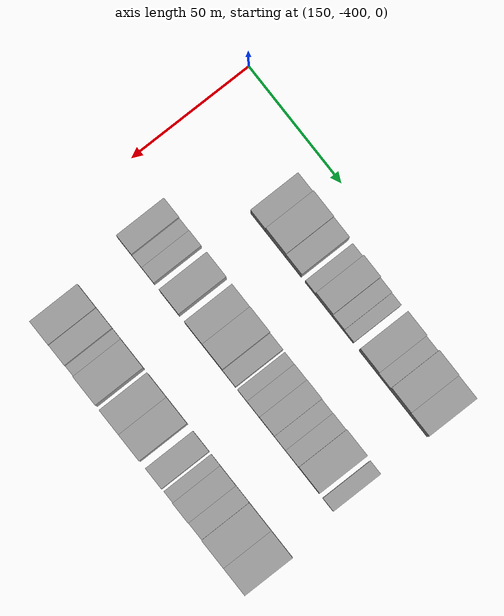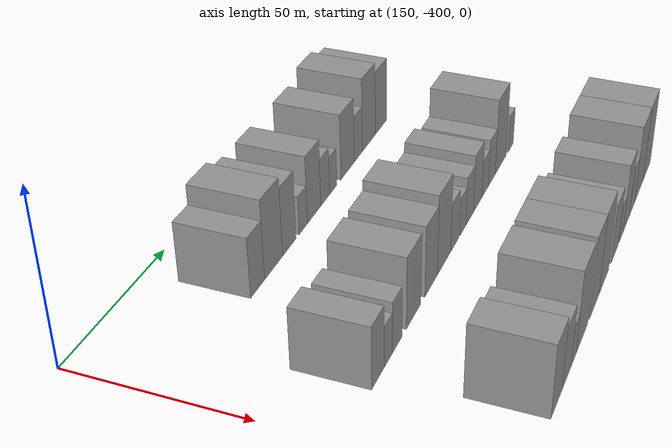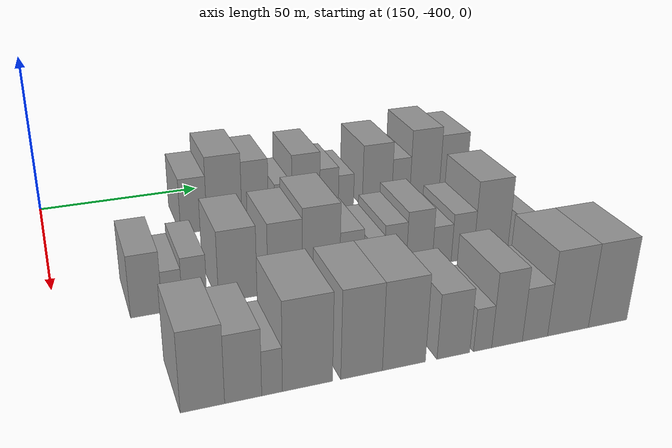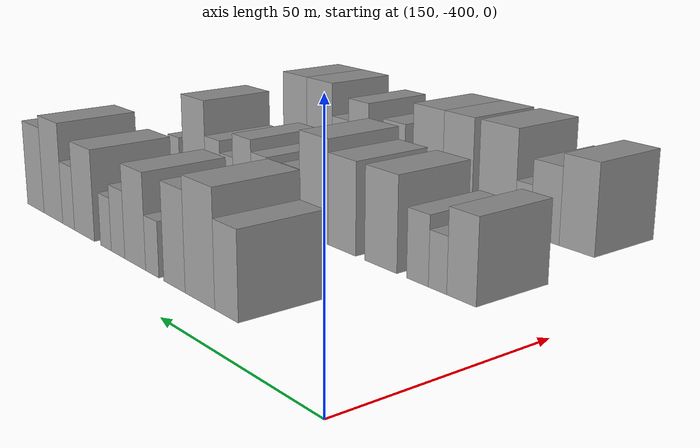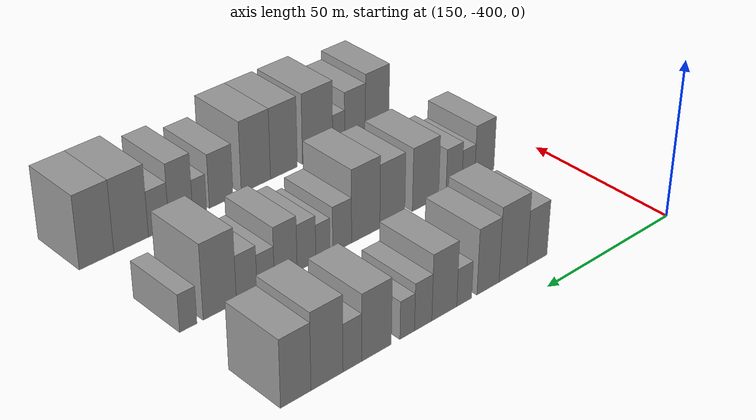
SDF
<sdf version="1.6">
 <world name="default">
  <model name="building_437">
   <static>1</static>
   <pose>170.0000 -356.8444 0 0.000000 0.000000 0.000000</pose>
   <link name="link">
    <pose>0 0 9.00 0 0 0</pose>
    <collision name="collision"><geometry><box><size>20.0000 8.0882 18.0000</size></box></geometry></collision>
    <visual name="visual">
     <cast_shadows>0</cast_shadows>
     <geometry><box><size>20.0000 8.0882 18.0000</size></box></geometry>
     <material>
      <script>
       <uri>model://grey_wall/materials/scripts</uri>
       <uri>model://grey_wall/materials/textures</uri>
       <name>vrc/grey_wall</name>
      </script>
     </material>
    </visual>
   </link>
  </model>
  <model name="building_438">
   <static>1</static>
   <pose>170.0000 -347.3635 0 0.000000 0.000000 0.000000</pose>
   <link name="link">
    <pose>0 0 12.00 0 0 0</pose>
    <collision name="collision"><geometry><box><size>20.0000 10.8737 24.0000</size></box></geometry></collision>
    <visual name="visual">
     <cast_shadows>0</cast_shadows>
     <geometry><box><size>20.0000 10.8737 24.0000</size></box></geometry>
     <material>
      <script>
       <uri>model://grey_wall/materials/scripts</uri>
       <uri>model://grey_wall/materials/textures</uri>
       <name>vrc/grey_wall</name>
      </script>
     </material>
    </visual>
   </link>
  </model>
  <model name="building_439">
   <static>1</static>
   <pose>170.0000 -337.7231 0 0.000000 0.000000 0.000000</pose>
   <link name="link">
    <pose>0 0 10.50 0 0 0</pose>
    <collision name="collision"><geometry><box><size>20.0000 8.4072 21.0000</size></box></geometry></collision>
    <visual name="visual">
     <cast_shadows>0</cast_shadows>
     <geometry><box><size>20.0000 8.4072 21.0000</size></box></geometry>
     <material>
      <script>
       <uri>model://grey_wall/materials/scripts</uri>
       <uri>model://grey_wall/materials/textures</uri>
       <name>vrc/grey_wall</name>
      </script>
     </material>
    </visual>
   </link>
  </model>
  <model name="building_440">
   <static>1</static>
   <pose>170.0000 -328.7533 0 0.000000 0.000000 0.000000</pose>
   <link name="link">
    <pose>0 0 6.00 0 0 0</pose>
    <collision name="collision"><geometry><box><size>20.0000 5.5322 12.0000</size></box></geometry></collision>
    <visual name="visual">
     <cast_shadows>0</cast_shadows>
     <geometry><box><size>20.0000 5.5322 12.0000</size></box></geometry>
     <material>
      <script>
       <uri>model://grey_wall/materials/scripts</uri>
       <uri>model://grey_wall/materials/textures</uri>
       <name>vrc/grey_wall</name>
      </script>
     </material>
    </visual>
   </link>
  </model>
  <model name="building_441">
   <static>1</static>
   <pose>170.0000 -321.4134 0 0.000000 0.000000 0.000000</pose>
   <link name="link">
    <pose>0 0 10.50 0 0 0</pose>
    <collision name="collision"><geometry><box><size>20.0000 9.1477 21.0000</size></box></geometry></collision>
    <visual name="visual">
     <cast_shadows>0</cast_shadows>
     <geometry><box><size>20.0000 9.1477 21.0000</size></box></geometry>
     <material>
      <script>
       <uri>model://grey_wall/materials/scripts</uri>
       <uri>model://grey_wall/materials/textures</uri>
       <name>vrc/grey_wall</name>
      </script>
     </material>
    </visual>
   </link>
  </model>
  <model name="building_442">
   <static>1</static>
   <pose>170.0000 -313.7286 0 0.000000 0.000000 0.000000</pose>
   <link name="link">
    <pose>0 0 7.50 0 0 0</pose>
    <collision name="collision"><geometry><box><size>20.0000 6.2219 15.0000</size></box></geometry></collision>
    <visual name="visual">
     <cast_shadows>0</cast_shadows>
     <geometry><box><size>20.0000 6.2219 15.0000</size></box></geometry>
     <material>
      <script>
       <uri>model://grey_wall/materials/scripts</uri>
       <uri>model://grey_wall/materials/textures</uri>
       <name>vrc/grey_wall</name>
      </script>
     </material>
    </visual>
   </link>
  </model>
  <model name="building_443">
   <static>1</static>
   <pose>170.0000 -308.0451 0 0.000000 0.000000 0.000000</pose>
   <link name="link">
    <pose>0 0 6.00 0 0 0</pose>
    <collision name="collision"><geometry><box><size>20.0000 5.1451 12.0000</size></box></geometry></collision>
    <visual name="visual">
     <cast_shadows>0</cast_shadows>
     <geometry><box><size>20.0000 5.1451 12.0000</size></box></geometry>
     <material>
      <script>
       <uri>model://grey_wall/materials/scripts</uri>
       <uri>model://grey_wall/materials/textures</uri>
       <name>vrc/grey_wall</name>
      </script>
     </material>
    </visual>
   </link>
  </model>
  <model name="building_444">
   <static>1</static>
   <pose>170.0000 -297.3879 0 0.000000 0.000000 0.000000</pose>
   <link name="link">
    <pose>0 0 10.50 0 0 0</pose>
    <collision name="collision"><geometry><box><size>20.0000 10.1693 21.0000</size></box></geometry></collision>
    <visual name="visual">
     <cast_shadows>0</cast_shadows>
     <geometry><box><size>20.0000 10.1693 21.0000</size></box></geometry>
     <material>
      <script>
       <uri>model://grey_wall/materials/scripts</uri>
       <uri>model://grey_wall/materials/textures</uri>
       <name>vrc/grey_wall</name>
      </script>
     </material>
    </visual>
   </link>
  </model>
  <model name="building_445">
   <static>1</static>
   <pose>170.0000 -289.1580 0 0.000000 0.000000 0.000000</pose>
   <link name="link">
    <pose>0 0 7.50 0 0 0</pose>
    <collision name="collision"><geometry><box><size>20.0000 6.2905 15.0000</size></box></geometry></collision>
    <visual name="visual">
     <cast_shadows>0</cast_shadows>
     <geometry><box><size>20.0000 6.2905 15.0000</size></box></geometry>
     <material>
      <script>
       <uri>model://grey_wall/materials/scripts</uri>
       <uri>model://grey_wall/materials/textures</uri>
       <name>vrc/grey_wall</name>
      </script>
     </material>
    </visual>
   </link>
  </model>
  <model name="building_446">
   <static>1</static>
   <pose>170.0000 -280.7615 0 0.000000 0.000000 0.000000</pose>
   <link name="link">
    <pose>0 0 12.00 0 0 0</pose>
    <collision name="collision"><geometry><box><size>20.0000 10.5026 24.0000</size></box></geometry></collision>
    <visual name="visual">
     <cast_shadows>0</cast_shadows>
     <geometry><box><size>20.0000 10.5026 24.0000</size></box></geometry>
     <material>
      <script>
       <uri>model://grey_wall/materials/scripts</uri>
       <uri>model://grey_wall/materials/textures</uri>
       <name>vrc/grey_wall</name>
      </script>
     </material>
    </visual>
   </link>
  </model>
  <model name="building_447">
   <static>1</static>
   <pose>170.0000 -270.6434 0 0.000000 0.000000 0.000000</pose>
   <link name="link">
    <pose>0 0 10.50 0 0 0</pose>
    <collision name="collision"><geometry><box><size>20.0000 9.7336 21.0000</size></box></geometry></collision>
    <visual name="visual">
     <cast_shadows>0</cast_shadows>
     <geometry><box><size>20.0000 9.7336 21.0000</size></box></geometry>
     <material>
      <script>
       <uri>model://grey_wall/materials/scripts</uri>
       <uri>model://grey_wall/materials/textures</uri>
       <name>vrc/grey_wall</name>
      </script>
     </material>
    </visual>
   </link>
  </model>
  <model name="building_570">
   <static>1</static>
   <pose>210.0000 -377.6664 0 0.000000 0.000000 0.000000</pose>
   <link name="link">
    <pose>0 0 9.00 0 0 0</pose>
    <collision name="collision"><geometry><box><size>20.0000 8.1096 18.0000</size></box></geometry></collision>
    <visual name="visual">
     <cast_shadows>0</cast_shadows>
     <geometry><box><size>20.0000 8.1096 18.0000</size></box></geometry>
     <material>
      <script>
       <uri>model://grey_wall/materials/scripts</uri>
       <uri>model://grey_wall/materials/textures</uri>
       <name>vrc/grey_wall</name>
      </script>
     </material>
    </visual>
   </link>
  </model>
  <model name="building_571">
   <static>1</static>
   <pose>210.0000 -370.9715 0 0.000000 0.000000 0.000000</pose>
   <link name="link">
    <pose>0 0 6.00 0 0 0</pose>
    <collision name="collision"><geometry><box><size>20.0000 5.2802 12.0000</size></box></geometry></collision>
    <visual name="visual">
     <cast_shadows>0</cast_shadows>
     <geometry><box><size>20.0000 5.2802 12.0000</size></box></geometry>
     <material>
      <script>
       <uri>model://grey_wall/materials/scripts</uri>
       <uri>model://grey_wall/materials/textures</uri>
       <name>vrc/grey_wall</name>
      </script>
     </material>
    </visual>
   </link>
  </model>
  <model name="building_572">
   <static>1</static>
   <pose>210.0000 -365.0639 0 0.000000 0.000000 0.000000</pose>
   <link name="link">
    <pose>0 0 7.50 0 0 0</pose>
    <collision name="collision"><geometry><box><size>20.0000 6.5351 15.0000</size></box></geometry></collision>
    <visual name="visual">
     <cast_shadows>0</cast_shadows>
     <geometry><box><size>20.0000 6.5351 15.0000</size></box></geometry>
     <material>
      <script>
       <uri>model://grey_wall/materials/scripts</uri>
       <uri>model://grey_wall/materials/textures</uri>
       <name>vrc/grey_wall</name>
      </script>
     </material>
    </visual>
   </link>
  </model>
  <model name="building_573">
   <static>1</static>
   <pose>210.0000 -353.5800 0 0.000000 0.000000 0.000000</pose>
   <link name="link">
    <pose>0 0 10.50 0 0 0</pose>
    <collision name="collision"><geometry><box><size>20.0000 10.4326 21.0000</size></box></geometry></collision>
    <visual name="visual">
     <cast_shadows>0</cast_shadows>
     <geometry><box><size>20.0000 10.4326 21.0000</size></box></geometry>
     <material>
      <script>
       <uri>model://grey_wall/materials/scripts</uri>
       <uri>model://grey_wall/materials/textures</uri>
       <name>vrc/grey_wall</name>
      </script>
     </material>
    </visual>
   </link>
  </model>
  <model name="building_574">
   <static>1</static>
   <pose>210.0000 -340.5528 0 0.000000 0.000000 0.000000</pose>
   <link name="link">
    <pose>0 0 10.50 0 0 0</pose>
    <collision name="collision"><geometry><box><size>20.0000 9.6219 21.0000</size></box></geometry></collision>
    <visual name="visual">
     <cast_shadows>0</cast_shadows>
     <geometry><box><size>20.0000 9.6219 21.0000</size></box></geometry>
     <material>
      <script>
       <uri>model://grey_wall/materials/scripts</uri>
       <uri>model://grey_wall/materials/textures</uri>
       <name>vrc/grey_wall</name>
      </script>
     </material>
    </visual>
   </link>
  </model>
  <model name="building_575">
   <static>1</static>
   <pose>210.0000 -330.4021 0 0.000000 0.000000 0.000000</pose>
   <link name="link">
    <pose>0 0 12.00 0 0 0</pose>
    <collision name="collision"><geometry><box><size>20.0000 10.6793 24.0000</size></box></geometry></collision>
    <visual name="visual">
     <cast_shadows>0</cast_shadows>
     <geometry><box><size>20.0000 10.6793 24.0000</size></box></geometry>
     <material>
      <script>
       <uri>model://grey_wall/materials/scripts</uri>
       <uri>model://grey_wall/materials/textures</uri>
       <name>vrc/grey_wall</name>
      </script>
     </material>
    </visual>
   </link>
  </model>
  <model name="building_576">
   <static>1</static>
   <pose>210.0000 -321.5930 0 0.000000 0.000000 0.000000</pose>
   <link name="link">
    <pose>0 0 7.50 0 0 0</pose>
    <collision name="collision"><geometry><box><size>20.0000 6.9389 15.0000</size></box></geometry></collision>
    <visual name="visual">
     <cast_shadows>0</cast_shadows>
     <geometry><box><size>20.0000 6.9389 15.0000</size></box></geometry>
     <material>
      <script>
       <uri>model://grey_wall/materials/scripts</uri>
       <uri>model://grey_wall/materials/textures</uri>
       <name>vrc/grey_wall</name>
      </script>
     </material>
    </visual>
   </link>
  </model>
  <model name="building_577">
   <static>1</static>
   <pose>210.0000 -314.5726 0 0.000000 0.000000 0.000000</pose>
   <link name="link">
    <pose>0 0 6.00 0 0 0</pose>
    <collision name="collision"><geometry><box><size>20.0000 5.1020 12.0000</size></box></geometry></collision>
    <visual name="visual">
     <cast_shadows>0</cast_shadows>
     <geometry><box><size>20.0000 5.1020 12.0000</size></box></geometry>
     <material>
      <script>
       <uri>model://grey_wall/materials/scripts</uri>
       <uri>model://grey_wall/materials/textures</uri>
       <name>vrc/grey_wall</name>
      </script>
     </material>
    </visual>
   </link>
  </model>
  <model name="building_578">
   <static>1</static>
   <pose>210.0000 -308.6801 0 0.000000 0.000000 0.000000</pose>
   <link name="link">
    <pose>0 0 7.50 0 0 0</pose>
    <collision name="collision"><geometry><box><size>20.0000 6.6829 15.0000</size></box></geometry></collision>
    <visual name="visual">
     <cast_shadows>0</cast_shadows>
     <geometry><box><size>20.0000 6.6829 15.0000</size></box></geometry>
     <material>
      <script>
       <uri>model://grey_wall/materials/scripts</uri>
       <uri>model://grey_wall/materials/textures</uri>
       <name>vrc/grey_wall</name>
      </script>
     </material>
    </visual>
   </link>
  </model>
  <model name="building_579">
   <static>1</static>
   <pose>210.0000 -301.3271 0 0.000000 0.000000 0.000000</pose>
   <link name="link">
    <pose>0 0 9.00 0 0 0</pose>
    <collision name="collision"><geometry><box><size>20.0000 8.0230 18.0000</size></box></geometry></collision>
    <visual name="visual">
     <cast_shadows>0</cast_shadows>
     <geometry><box><size>20.0000 8.0230 18.0000</size></box></geometry>
     <material>
      <script>
       <uri>model://grey_wall/materials/scripts</uri>
       <uri>model://grey_wall/materials/textures</uri>
       <name>vrc/grey_wall</name>
      </script>
     </material>
    </visual>
   </link>
  </model>
  <model name="building_580">
   <static>1</static>
   <pose>210.0000 -294.3490 0 0.000000 0.000000 0.000000</pose>
   <link name="link">
    <pose>0 0 6.00 0 0 0</pose>
    <collision name="collision"><geometry><box><size>20.0000 5.9332 12.0000</size></box></geometry></collision>
    <visual name="visual">
     <cast_shadows>0</cast_shadows>
     <geometry><box><size>20.0000 5.9332 12.0000</size></box></geometry>
     <material>
      <script>
       <uri>model://grey_wall/materials/scripts</uri>
       <uri>model://grey_wall/materials/textures</uri>
       <name>vrc/grey_wall</name>
      </script>
     </material>
    </visual>
   </link>
  </model>
  <model name="building_581">
   <static>1</static>
   <pose>210.0000 -287.8779 0 0.000000 0.000000 0.000000</pose>
   <link name="link">
    <pose>0 0 7.50 0 0 0</pose>
    <collision name="collision"><geometry><box><size>20.0000 7.0091 15.0000</size></box></geometry></collision>
    <visual name="visual">
     <cast_shadows>0</cast_shadows>
     <geometry><box><size>20.0000 7.0091 15.0000</size></box></geometry>
     <material>
      <script>
       <uri>model://grey_wall/materials/scripts</uri>
       <uri>model://grey_wall/materials/textures</uri>
       <name>vrc/grey_wall</name>
      </script>
     </material>
    </visual>
   </link>
  </model>
  <model name="building_582">
   <static>1</static>
   <pose>210.0000 -278.8611 0 0.000000 0.000000 0.000000</pose>
   <link name="link">
    <pose>0 0 12.00 0 0 0</pose>
    <collision name="collision"><geometry><box><size>20.0000 11.0244 24.0000</size></box></geometry></collision>
    <visual name="visual">
     <cast_shadows>0</cast_shadows>
     <geometry><box><size>20.0000 11.0244 24.0000</size></box></geometry>
     <material>
      <script>
       <uri>model://grey_wall/materials/scripts</uri>
       <uri>model://grey_wall/materials/textures</uri>
       <name>vrc/grey_wall</name>
      </script>
     </material>
    </visual>
   </link>
  </model>
  <model name="building_583">
   <static>1</static>
   <pose>210.0000 -268.5384 0 0.000000 0.000000 0.000000</pose>
   <link name="link">
    <pose>0 0 6.00 0 0 0</pose>
    <collision name="collision"><geometry><box><size>20.0000 5.6210 12.0000</size></box></geometry></collision>
    <visual name="visual">
     <cast_shadows>0</cast_shadows>
     <geometry><box><size>20.0000 5.6210 12.0000</size></box></geometry>
     <material>
      <script>
       <uri>model://grey_wall/materials/scripts</uri>
       <uri>model://grey_wall/materials/textures</uri>
       <name>vrc/grey_wall</name>
      </script>
     </material>
    </visual>
   </link>
  </model>
  <model name="building_716">
   <static>1</static>
   <pose>250.0000 -371.8988 0 0.000000 0.000000 0.000000</pose>
   <link name="link">
    <pose>0 0 10.50 0 0 0</pose>
    <collision name="collision"><geometry><box><size>20.0000 9.9201 21.0000</size></box></geometry></collision>
    <visual name="visual">
     <cast_shadows>0</cast_shadows>
     <geometry><box><size>20.0000 9.9201 21.0000</size></box></geometry>
     <material>
      <script>
       <uri>model://grey_wall/materials/scripts</uri>
       <uri>model://grey_wall/materials/textures</uri>
       <name>vrc/grey_wall</name>
      </script>
     </material>
    </visual>
   </link>
  </model>
  <model name="building_717">
   <static>1</static>
   <pose>250.0000 -362.7013 0 0.000000 0.000000 0.000000</pose>
   <link name="link">
    <pose>0 0 9.00 0 0 0</pose>
    <collision name="collision"><geometry><box><size>20.0000 8.4749 18.0000</size></box></geometry></collision>
    <visual name="visual">
     <cast_shadows>0</cast_shadows>
     <geometry><box><size>20.0000 8.4749 18.0000</size></box></geometry>
     <material>
      <script>
       <uri>model://grey_wall/materials/scripts</uri>
       <uri>model://grey_wall/materials/textures</uri>
       <name>vrc/grey_wall</name>
      </script>
     </material>
    </visual>
   </link>
  </model>
  <model name="building_718">
   <static>1</static>
   <pose>250.0000 -356.0570 0 0.000000 0.000000 0.000000</pose>
   <link name="link">
    <pose>0 0 6.00 0 0 0</pose>
    <collision name="collision"><geometry><box><size>20.0000 4.8138 12.0000</size></box></geometry></collision>
    <visual name="visual">
     <cast_shadows>0</cast_shadows>
     <geometry><box><size>20.0000 4.8138 12.0000</size></box></geometry>
     <material>
      <script>
       <uri>model://grey_wall/materials/scripts</uri>
       <uri>model://grey_wall/materials/textures</uri>
       <name>vrc/grey_wall</name>
      </script>
     </material>
    </visual>
   </link>
  </model>
  <model name="building_719">
   <static>1</static>
   <pose>250.0000 -347.6574 0 0.000000 0.000000 0.000000</pose>
   <link name="link">
    <pose>0 0 12.00 0 0 0</pose>
    <collision name="collision"><geometry><box><size>20.0000 11.9853 24.0000</size></box></geometry></collision>
    <visual name="visual">
     <cast_shadows>0</cast_shadows>
     <geometry><box><size>20.0000 11.9853 24.0000</size></box></geometry>
     <material>
      <script>
       <uri>model://grey_wall/materials/scripts</uri>
       <uri>model://grey_wall/materials/textures</uri>
       <name>vrc/grey_wall</name>
      </script>
     </material>
    </visual>
   </link>
  </model>
  <model name="building_720">
   <static>1</static>
   <pose>250.0000 -334.5086 0 0.000000 0.000000 0.000000</pose>
   <link name="link">
    <pose>0 0 12.00 0 0 0</pose>
    <collision name="collision"><geometry><box><size>20.0000 10.3122 24.0000</size></box></geometry></collision>
    <visual name="visual">
     <cast_shadows>0</cast_shadows>
     <geometry><box><size>20.0000 10.3122 24.0000</size></box></geometry>
     <material>
      <script>
       <uri>model://grey_wall/materials/scripts</uri>
       <uri>model://grey_wall/materials/textures</uri>
       <name>vrc/grey_wall</name>
      </script>
     </material>
    </visual>
   </link>
  </model>
  <model name="building_721">
   <static>1</static>
   <pose>250.0000 -323.8544 0 0.000000 0.000000 0.000000</pose>
   <link name="link">
    <pose>0 0 12.00 0 0 0</pose>
    <collision name="collision"><geometry><box><size>20.0000 10.9961 24.0000</size></box></geometry></collision>
    <visual name="visual">
     <cast_shadows>0</cast_shadows>
     <geometry><box><size>20.0000 10.9961 24.0000</size></box></geometry>
     <material>
      <script>
       <uri>model://grey_wall/materials/scripts</uri>
       <uri>model://grey_wall/materials/textures</uri>
       <name>vrc/grey_wall</name>
      </script>
     </material>
    </visual>
   </link>
  </model>
  <model name="building_722">
   <static>1</static>
   <pose>250.0000 -311.0308 0 0.000000 0.000000 0.000000</pose>
   <link name="link">
    <pose>0 0 9.00 0 0 0</pose>
    <collision name="collision"><geometry><box><size>20.0000 8.6510 18.0000</size></box></geometry></collision>
    <visual name="visual">
     <cast_shadows>0</cast_shadows>
     <geometry><box><size>20.0000 8.6510 18.0000</size></box></geometry>
     <material>
      <script>
       <uri>model://grey_wall/materials/scripts</uri>
       <uri>model://grey_wall/materials/textures</uri>
       <name>vrc/grey_wall</name>
      </script>
     </material>
    </visual>
   </link>
  </model>
  <model name="building_723">
   <static>1</static>
   <pose>250.0000 -303.2541 0 0.000000 0.000000 0.000000</pose>
   <link name="link">
    <pose>0 0 6.00 0 0 0</pose>
    <collision name="collision"><geometry><box><size>20.0000 4.9024 12.0000</size></box></geometry></collision>
    <visual name="visual">
     <cast_shadows>0</cast_shadows>
     <geometry><box><size>20.0000 4.9024 12.0000</size></box></geometry>
     <material>
      <script>
       <uri>model://grey_wall/materials/scripts</uri>
       <uri>model://grey_wall/materials/textures</uri>
       <name>vrc/grey_wall</name>
      </script>
     </material>
    </visual>
   </link>
  </model>
  <model name="building_724">
   <static>1</static>
   <pose>250.0000 -296.5995 0 0.000000 0.000000 0.000000</pose>
   <link name="link">
    <pose>0 0 10.50 0 0 0</pose>
    <collision name="collision"><geometry><box><size>20.0000 8.4069 21.0000</size></box></geometry></collision>
    <visual name="visual">
     <cast_shadows>0</cast_shadows>
     <geometry><box><size>20.0000 8.4069 21.0000</size></box></geometry>
     <material>
      <script>
       <uri>model://grey_wall/materials/scripts</uri>
       <uri>model://grey_wall/materials/textures</uri>
       <name>vrc/grey_wall</name>
      </script>
     </material>
    </visual>
   </link>
  </model>
  <model name="building_725">
   <static>1</static>
   <pose>250.0000 -288.8609 0 0.000000 0.000000 0.000000</pose>
   <link name="link">
    <pose>0 0 7.50 0 0 0</pose>
    <collision name="collision"><geometry><box><size>20.0000 7.0701 15.0000</size></box></geometry></collision>
    <visual name="visual">
     <cast_shadows>0</cast_shadows>
     <geometry><box><size>20.0000 7.0701 15.0000</size></box></geometry>
     <material>
      <script>
       <uri>model://grey_wall/materials/scripts</uri>
       <uri>model://grey_wall/materials/textures</uri>
       <name>vrc/grey_wall</name>
      </script>
     </material>
    </visual>
   </link>
  </model>
  <model name="building_726">
   <static>1</static>
   <pose>250.0000 -279.4825 0 0.000000 0.000000 0.000000</pose>
   <link name="link">
    <pose>0 0 12.00 0 0 0</pose>
    <collision name="collision"><geometry><box><size>20.0000 11.6867 24.0000</size></box></geometry></collision>
    <visual name="visual">
     <cast_shadows>0</cast_shadows>
     <geometry><box><size>20.0000 11.6867 24.0000</size></box></geometry>
     <material>
      <script>
       <uri>model://grey_wall/materials/scripts</uri>
       <uri>model://grey_wall/materials/textures</uri>
       <name>vrc/grey_wall</name>
      </script>
     </material>
    </visual>
   </link>
  </model>
  <model name="building_727">
   <static>1</static>
   <pose>250.0000 -267.9521 0 0.000000 0.000000 0.000000</pose>
   <link name="link">
    <pose>0 0 12.00 0 0 0</pose>
    <collision name="collision"><geometry><box><size>20.0000 11.3741 24.0000</size></box></geometry></collision>
    <visual name="visual">
     <cast_shadows>0</cast_shadows>
     <geometry><box><size>20.0000 11.3741 24.0000</size></box></geometry>
     <material>
      <script>
       <uri>model://grey_wall/materials/scripts</uri>
       <uri>model://grey_wall/materials/textures</uri>
       <name>vrc/grey_wall</name>
      </script>
     </material>
    </visual>
   </link>
  </model>
 </world>
</sdf>
